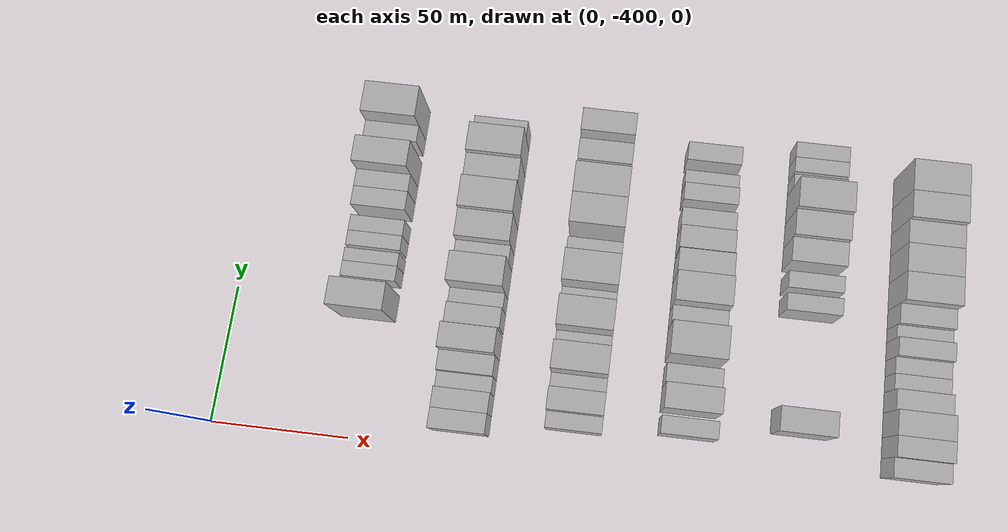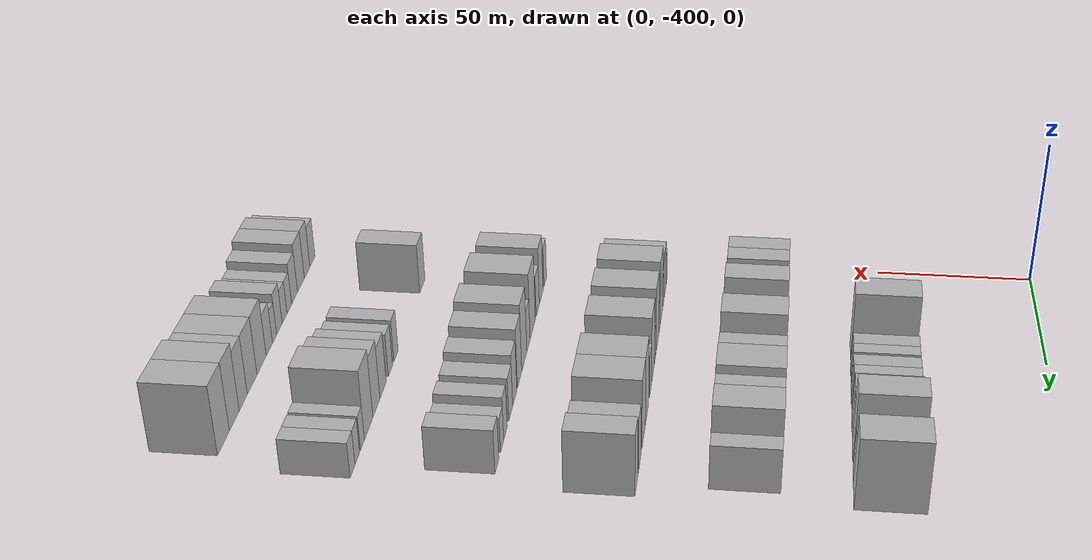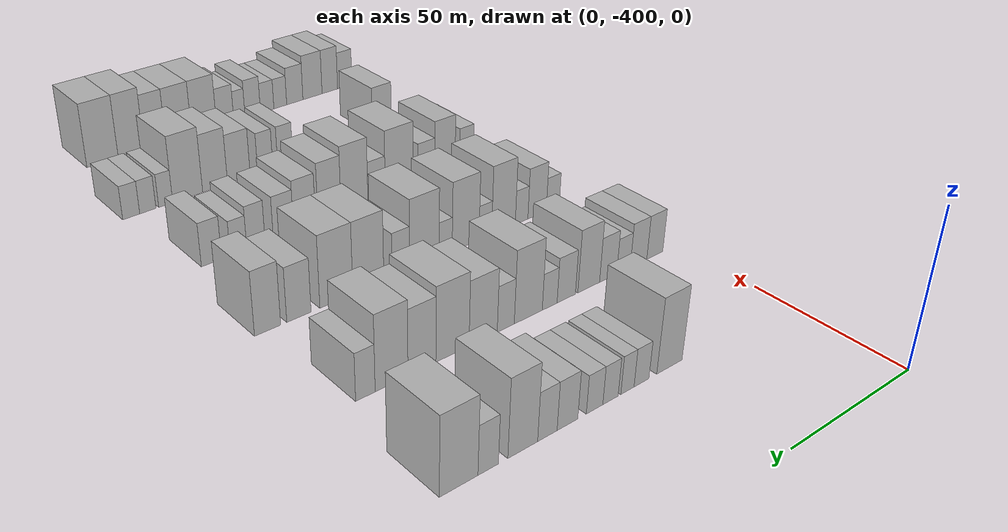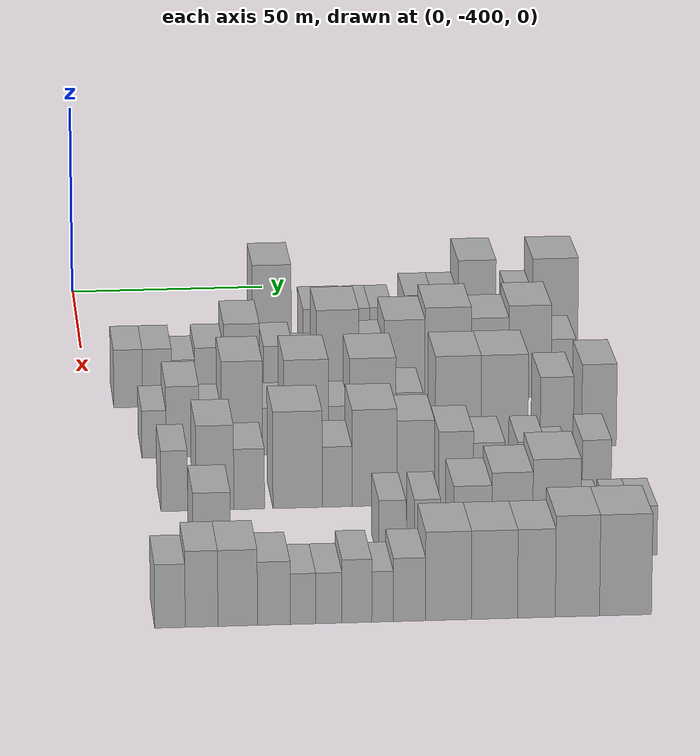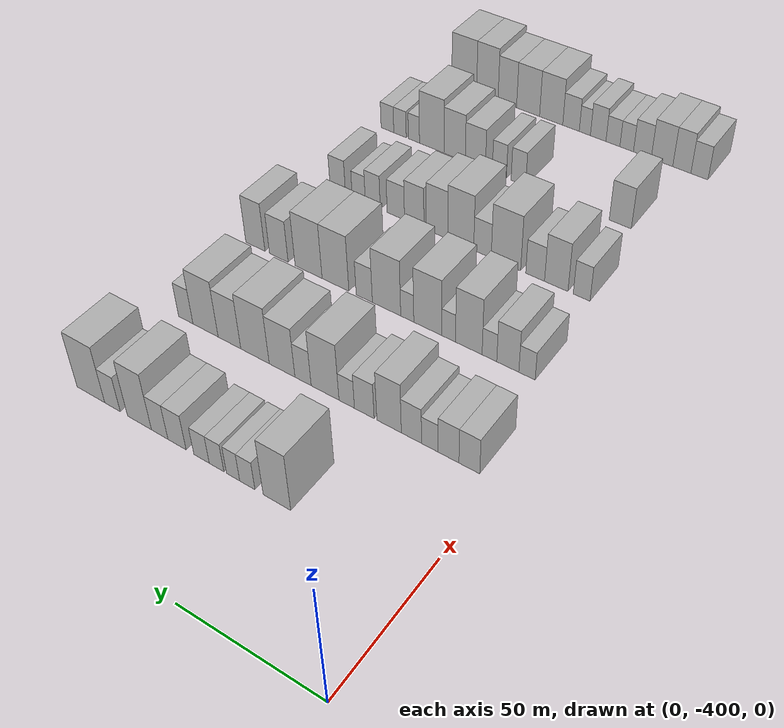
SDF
<sdf version="1.6">
 <world name="default">
  <model name="building_27">
   <static>1</static>
   <pose>50.0000 -351.5895 0 0.000000 0.000000 0.000000</pose>
   <link name="link">
    <pose>0 0 12.00 0 0 0</pose>
    <collision name="collision"><geometry><box><size>20.0000 9.9109 24.0000</size></box></geometry></collision>
    <visual name="visual">
     <cast_shadows>0</cast_shadows>
     <geometry><box><size>20.0000 9.9109 24.0000</size></box></geometry>
     <material>
      <script>
       <uri>model://HANNAS_wall/materials/scripts</uri>
       <uri>model://HANNAS_wall/materials/textures</uri>
       <name>vrc/HANNAS_wall</name>
      </script>
     </material>
    </visual>
   </link>
  </model>
  <model name="building_28">
   <static>1</static>
   <pose>50.0000 -340.8206 0 0.000000 0.000000 0.000000</pose>
   <link name="link">
    <pose>0 0 6.00 0 0 0</pose>
    <collision name="collision"><geometry><box><size>20.0000 5.6268 12.0000</size></box></geometry></collision>
    <visual name="visual">
     <cast_shadows>0</cast_shadows>
     <geometry><box><size>20.0000 5.6268 12.0000</size></box></geometry>
     <material>
      <script>
       <uri>model://HANNAS_wall/materials/scripts</uri>
       <uri>model://HANNAS_wall/materials/textures</uri>
       <name>vrc/HANNAS_wall</name>
      </script>
     </material>
    </visual>
   </link>
  </model>
  <model name="building_29">
   <static>1</static>
   <pose>50.0000 -335.5534 0 0.000000 0.000000 0.000000</pose>
   <link name="link">
    <pose>0 0 6.00 0 0 0</pose>
    <collision name="collision"><geometry><box><size>20.0000 4.9076 12.0000</size></box></geometry></collision>
    <visual name="visual">
     <cast_shadows>0</cast_shadows>
     <geometry><box><size>20.0000 4.9076 12.0000</size></box></geometry>
     <material>
      <script>
       <uri>model://HANNAS_wall/materials/scripts</uri>
       <uri>model://HANNAS_wall/materials/textures</uri>
       <name>vrc/HANNAS_wall</name>
      </script>
     </material>
    </visual>
   </link>
  </model>
  <model name="building_30">
   <static>1</static>
   <pose>50.0000 -329.3261 0 0.000000 0.000000 0.000000</pose>
   <link name="link">
    <pose>0 0 6.00 0 0 0</pose>
    <collision name="collision"><geometry><box><size>20.0000 5.5471 12.0000</size></box></geometry></collision>
    <visual name="visual">
     <cast_shadows>0</cast_shadows>
     <geometry><box><size>20.0000 5.5471 12.0000</size></box></geometry>
     <material>
      <script>
       <uri>model://HANNAS_wall/materials/scripts</uri>
       <uri>model://HANNAS_wall/materials/textures</uri>
       <name>vrc/HANNAS_wall</name>
      </script>
     </material>
    </visual>
   </link>
  </model>
  <model name="building_31">
   <static>1</static>
   <pose>50.0000 -323.6118 0 0.000000 0.000000 0.000000</pose>
   <link name="link">
    <pose>0 0 6.00 0 0 0</pose>
    <collision name="collision"><geometry><box><size>20.0000 5.8816 12.0000</size></box></geometry></collision>
    <visual name="visual">
     <cast_shadows>0</cast_shadows>
     <geometry><box><size>20.0000 5.8816 12.0000</size></box></geometry>
     <material>
      <script>
       <uri>model://HANNAS_wall/materials/scripts</uri>
       <uri>model://HANNAS_wall/materials/textures</uri>
       <name>vrc/HANNAS_wall</name>
      </script>
     </material>
    </visual>
   </link>
  </model>
  <model name="building_32">
   <static>1</static>
   <pose>50.0000 -314.1116 0 0.000000 0.000000 0.000000</pose>
   <link name="link">
    <pose>0 0 7.50 0 0 0</pose>
    <collision name="collision"><geometry><box><size>20.0000 7.1188 15.0000</size></box></geometry></collision>
    <visual name="visual">
     <cast_shadows>0</cast_shadows>
     <geometry><box><size>20.0000 7.1188 15.0000</size></box></geometry>
     <material>
      <script>
       <uri>model://HANNAS_wall/materials/scripts</uri>
       <uri>model://HANNAS_wall/materials/textures</uri>
       <name>vrc/HANNAS_wall</name>
      </script>
     </material>
    </visual>
   </link>
  </model>
  <model name="building_33">
   <static>1</static>
   <pose>50.0000 -307.2831 0 0.000000 0.000000 0.000000</pose>
   <link name="link">
    <pose>0 0 7.50 0 0 0</pose>
    <collision name="collision"><geometry><box><size>20.0000 6.5383 15.0000</size></box></geometry></collision>
    <visual name="visual">
     <cast_shadows>0</cast_shadows>
     <geometry><box><size>20.0000 6.5383 15.0000</size></box></geometry>
     <material>
      <script>
       <uri>model://HANNAS_wall/materials/scripts</uri>
       <uri>model://HANNAS_wall/materials/textures</uri>
       <name>vrc/HANNAS_wall</name>
      </script>
     </material>
    </visual>
   </link>
  </model>
  <model name="building_34">
   <static>1</static>
   <pose>50.0000 -299.1595 0 0.000000 0.000000 0.000000</pose>
   <link name="link">
    <pose>0 0 12.00 0 0 0</pose>
    <collision name="collision"><geometry><box><size>20.0000 9.7088 24.0000</size></box></geometry></collision>
    <visual name="visual">
     <cast_shadows>0</cast_shadows>
     <geometry><box><size>20.0000 9.7088 24.0000</size></box></geometry>
     <material>
      <script>
       <uri>model://HANNAS_wall/materials/scripts</uri>
       <uri>model://HANNAS_wall/materials/textures</uri>
       <name>vrc/HANNAS_wall</name>
      </script>
     </material>
    </visual>
   </link>
  </model>
  <model name="building_35">
   <static>1</static>
   <pose>50.0000 -288.0968 0 0.000000 0.000000 0.000000</pose>
   <link name="link">
    <pose>0 0 7.50 0 0 0</pose>
    <collision name="collision"><geometry><box><size>20.0000 6.4166 15.0000</size></box></geometry></collision>
    <visual name="visual">
     <cast_shadows>0</cast_shadows>
     <geometry><box><size>20.0000 6.4166 15.0000</size></box></geometry>
     <material>
      <script>
       <uri>model://HANNAS_wall/materials/scripts</uri>
       <uri>model://HANNAS_wall/materials/textures</uri>
       <name>vrc/HANNAS_wall</name>
      </script>
     </material>
    </visual>
   </link>
  </model>
  <model name="building_36">
   <static>1</static>
   <pose>50.0000 -279.0418 0 0.000000 0.000000 0.000000</pose>
   <link name="link">
    <pose>0 0 12.00 0 0 0</pose>
    <collision name="collision"><geometry><box><size>20.0000 11.6933 24.0000</size></box></geometry></collision>
    <visual name="visual">
     <cast_shadows>0</cast_shadows>
     <geometry><box><size>20.0000 11.6933 24.0000</size></box></geometry>
     <material>
      <script>
       <uri>model://HANNAS_wall/materials/scripts</uri>
       <uri>model://HANNAS_wall/materials/textures</uri>
       <name>vrc/HANNAS_wall</name>
      </script>
     </material>
    </visual>
   </link>
  </model>
  <model name="building_160">
   <static>1</static>
   <pose>90.0000 -390.1315 0 0.000000 0.000000 0.000000</pose>
   <link name="link">
    <pose>0 0 7.50 0 0 0</pose>
    <collision name="collision"><geometry><box><size>20.0000 7.1102 15.0000</size></box></geometry></collision>
    <visual name="visual">
     <cast_shadows>0</cast_shadows>
     <geometry><box><size>20.0000 7.1102 15.0000</size></box></geometry>
     <material>
      <script>
       <uri>model://HANNAS_wall/materials/scripts</uri>
       <uri>model://HANNAS_wall/materials/textures</uri>
       <name>vrc/HANNAS_wall</name>
      </script>
     </material>
    </visual>
   </link>
  </model>
  <model name="building_161">
   <static>1</static>
   <pose>90.0000 -382.9507 0 0.000000 0.000000 0.000000</pose>
   <link name="link">
    <pose>0 0 7.50 0 0 0</pose>
    <collision name="collision"><geometry><box><size>20.0000 7.2513 15.0000</size></box></geometry></collision>
    <visual name="visual">
     <cast_shadows>0</cast_shadows>
     <geometry><box><size>20.0000 7.2513 15.0000</size></box></geometry>
     <material>
      <script>
       <uri>model://HANNAS_wall/materials/scripts</uri>
       <uri>model://HANNAS_wall/materials/textures</uri>
       <name>vrc/HANNAS_wall</name>
      </script>
     </material>
    </visual>
   </link>
  </model>
  <model name="building_162">
   <static>1</static>
   <pose>90.0000 -376.4285 0 0.000000 0.000000 0.000000</pose>
   <link name="link">
    <pose>0 0 6.00 0 0 0</pose>
    <collision name="collision"><geometry><box><size>20.0000 5.7932 12.0000</size></box></geometry></collision>
    <visual name="visual">
     <cast_shadows>0</cast_shadows>
     <geometry><box><size>20.0000 5.7932 12.0000</size></box></geometry>
     <material>
      <script>
       <uri>model://HANNAS_wall/materials/scripts</uri>
       <uri>model://HANNAS_wall/materials/textures</uri>
       <name>vrc/HANNAS_wall</name>
      </script>
     </material>
    </visual>
   </link>
  </model>
  <model name="building_163">
   <static>1</static>
   <pose>90.0000 -369.9299 0 0.000000 0.000000 0.000000</pose>
   <link name="link">
    <pose>0 0 7.50 0 0 0</pose>
    <collision name="collision"><geometry><box><size>20.0000 7.2039 15.0000</size></box></geometry></collision>
    <visual name="visual">
     <cast_shadows>0</cast_shadows>
     <geometry><box><size>20.0000 7.2039 15.0000</size></box></geometry>
     <material>
      <script>
       <uri>model://HANNAS_wall/materials/scripts</uri>
       <uri>model://HANNAS_wall/materials/textures</uri>
       <name>vrc/HANNAS_wall</name>
      </script>
     </material>
    </visual>
   </link>
  </model>
  <model name="building_164">
   <static>1</static>
   <pose>90.0000 -361.8781 0 0.000000 0.000000 0.000000</pose>
   <link name="link">
    <pose>0 0 10.50 0 0 0</pose>
    <collision name="collision"><geometry><box><size>20.0000 8.8998 21.0000</size></box></geometry></collision>
    <visual name="visual">
     <cast_shadows>0</cast_shadows>
     <geometry><box><size>20.0000 8.8998 21.0000</size></box></geometry>
     <material>
      <script>
       <uri>model://HANNAS_wall/materials/scripts</uri>
       <uri>model://HANNAS_wall/materials/textures</uri>
       <name>vrc/HANNAS_wall</name>
      </script>
     </material>
    </visual>
   </link>
  </model>
  <model name="building_165">
   <static>1</static>
   <pose>90.0000 -352.7804 0 0.000000 0.000000 0.000000</pose>
   <link name="link">
    <pose>0 0 7.50 0 0 0</pose>
    <collision name="collision"><geometry><box><size>20.0000 7.2956 15.0000</size></box></geometry></collision>
    <visual name="visual">
     <cast_shadows>0</cast_shadows>
     <geometry><box><size>20.0000 7.2956 15.0000</size></box></geometry>
     <material>
      <script>
       <uri>model://HANNAS_wall/materials/scripts</uri>
       <uri>model://HANNAS_wall/materials/textures</uri>
       <name>vrc/HANNAS_wall</name>
      </script>
     </material>
    </visual>
   </link>
  </model>
  <model name="building_166">
   <static>1</static>
   <pose>90.0000 -346.2316 0 0.000000 0.000000 0.000000</pose>
   <link name="link">
    <pose>0 0 6.00 0 0 0</pose>
    <collision name="collision"><geometry><box><size>20.0000 5.8021 12.0000</size></box></geometry></collision>
    <visual name="visual">
     <cast_shadows>0</cast_shadows>
     <geometry><box><size>20.0000 5.8021 12.0000</size></box></geometry>
     <material>
      <script>
       <uri>model://HANNAS_wall/materials/scripts</uri>
       <uri>model://HANNAS_wall/materials/textures</uri>
       <name>vrc/HANNAS_wall</name>
      </script>
     </material>
    </visual>
   </link>
  </model>
  <model name="building_167">
   <static>1</static>
   <pose>90.0000 -338.0031 0 0.000000 0.000000 0.000000</pose>
   <link name="link">
    <pose>0 0 12.00 0 0 0</pose>
    <collision name="collision"><geometry><box><size>20.0000 10.6549 24.0000</size></box></geometry></collision>
    <visual name="visual">
     <cast_shadows>0</cast_shadows>
     <geometry><box><size>20.0000 10.6549 24.0000</size></box></geometry>
     <material>
      <script>
       <uri>model://HANNAS_wall/materials/scripts</uri>
       <uri>model://HANNAS_wall/materials/textures</uri>
       <name>vrc/HANNAS_wall</name>
      </script>
     </material>
    </visual>
   </link>
  </model>
  <model name="building_168">
   <static>1</static>
   <pose>90.0000 -329.5153 0 0.000000 0.000000 0.000000</pose>
   <link name="link">
    <pose>0 0 7.50 0 0 0</pose>
    <collision name="collision"><geometry><box><size>20.0000 6.3205 15.0000</size></box></geometry></collision>
    <visual name="visual">
     <cast_shadows>0</cast_shadows>
     <geometry><box><size>20.0000 6.3205 15.0000</size></box></geometry>
     <material>
      <script>
       <uri>model://HANNAS_wall/materials/scripts</uri>
       <uri>model://HANNAS_wall/materials/textures</uri>
       <name>vrc/HANNAS_wall</name>
      </script>
     </material>
    </visual>
   </link>
  </model>
  <model name="building_169">
   <static>1</static>
   <pose>90.0000 -321.2639 0 0.000000 0.000000 0.000000</pose>
   <link name="link">
    <pose>0 0 10.50 0 0 0</pose>
    <collision name="collision"><geometry><box><size>20.0000 10.1824 21.0000</size></box></geometry></collision>
    <visual name="visual">
     <cast_shadows>0</cast_shadows>
     <geometry><box><size>20.0000 10.1824 21.0000</size></box></geometry>
     <material>
      <script>
       <uri>model://HANNAS_wall/materials/scripts</uri>
       <uri>model://HANNAS_wall/materials/textures</uri>
       <name>vrc/HANNAS_wall</name>
      </script>
     </material>
    </visual>
   </link>
  </model>
  <model name="building_170">
   <static>1</static>
   <pose>90.0000 -310.3995 0 0.000000 0.000000 0.000000</pose>
   <link name="link">
    <pose>0 0 12.00 0 0 0</pose>
    <collision name="collision"><geometry><box><size>20.0000 11.5463 24.0000</size></box></geometry></collision>
    <visual name="visual">
     <cast_shadows>0</cast_shadows>
     <geometry><box><size>20.0000 11.5463 24.0000</size></box></geometry>
     <material>
      <script>
       <uri>model://HANNAS_wall/materials/scripts</uri>
       <uri>model://HANNAS_wall/materials/textures</uri>
       <name>vrc/HANNAS_wall</name>
      </script>
     </material>
    </visual>
   </link>
  </model>
  <model name="building_171">
   <static>1</static>
   <pose>90.0000 -299.9283 0 0.000000 0.000000 0.000000</pose>
   <link name="link">
    <pose>0 0 10.50 0 0 0</pose>
    <collision name="collision"><geometry><box><size>20.0000 9.3961 21.0000</size></box></geometry></collision>
    <visual name="visual">
     <cast_shadows>0</cast_shadows>
     <geometry><box><size>20.0000 9.3961 21.0000</size></box></geometry>
     <material>
      <script>
       <uri>model://HANNAS_wall/materials/scripts</uri>
       <uri>model://HANNAS_wall/materials/textures</uri>
       <name>vrc/HANNAS_wall</name>
      </script>
     </material>
    </visual>
   </link>
  </model>
  <model name="building_172">
   <static>1</static>
   <pose>90.0000 -289.8986 0 0.000000 0.000000 0.000000</pose>
   <link name="link">
    <pose>0 0 12.00 0 0 0</pose>
    <collision name="collision"><geometry><box><size>20.0000 10.6634 24.0000</size></box></geometry></collision>
    <visual name="visual">
     <cast_shadows>0</cast_shadows>
     <geometry><box><size>20.0000 10.6634 24.0000</size></box></geometry>
     <material>
      <script>
       <uri>model://HANNAS_wall/materials/scripts</uri>
       <uri>model://HANNAS_wall/materials/textures</uri>
       <name>vrc/HANNAS_wall</name>
      </script>
     </material>
    </visual>
   </link>
  </model>
  <model name="building_173">
   <static>1</static>
   <pose>90.0000 -281.4781 0 0.000000 0.000000 0.000000</pose>
   <link name="link">
    <pose>0 0 7.50 0 0 0</pose>
    <collision name="collision"><geometry><box><size>20.0000 6.1776 15.0000</size></box></geometry></collision>
    <visual name="visual">
     <cast_shadows>0</cast_shadows>
     <geometry><box><size>20.0000 6.1776 15.0000</size></box></geometry>
     <material>
      <script>
       <uri>model://HANNAS_wall/materials/scripts</uri>
       <uri>model://HANNAS_wall/materials/textures</uri>
       <name>vrc/HANNAS_wall</name>
      </script>
     </material>
    </visual>
   </link>
  </model>
  <model name="building_292">
   <static>1</static>
   <pose>130.0000 -385.7689 0 0.000000 0.000000 0.000000</pose>
   <link name="link">
    <pose>0 0 6.00 0 0 0</pose>
    <collision name="collision"><geometry><box><size>20.0000 5.8402 12.0000</size></box></geometry></collision>
    <visual name="visual">
     <cast_shadows>0</cast_shadows>
     <geometry><box><size>20.0000 5.8402 12.0000</size></box></geometry>
     <material>
      <script>
       <uri>model://HANNAS_wall/materials/scripts</uri>
       <uri>model://HANNAS_wall/materials/textures</uri>
       <name>vrc/HANNAS_wall</name>
      </script>
     </material>
    </visual>
   </link>
  </model>
  <model name="building_293">
   <static>1</static>
   <pose>130.0000 -378.8366 0 0.000000 0.000000 0.000000</pose>
   <link name="link">
    <pose>0 0 9.00 0 0 0</pose>
    <collision name="collision"><geometry><box><size>20.0000 8.0244 18.0000</size></box></geometry></collision>
    <visual name="visual">
     <cast_shadows>0</cast_shadows>
     <geometry><box><size>20.0000 8.0244 18.0000</size></box></geometry>
     <material>
      <script>
       <uri>model://HANNAS_wall/materials/scripts</uri>
       <uri>model://HANNAS_wall/materials/textures</uri>
       <name>vrc/HANNAS_wall</name>
      </script>
     </material>
    </visual>
   </link>
  </model>
  <model name="building_294">
   <static>1</static>
   <pose>130.0000 -372.1173 0 0.000000 0.000000 0.000000</pose>
   <link name="link">
    <pose>0 0 6.00 0 0 0</pose>
    <collision name="collision"><geometry><box><size>20.0000 5.4142 12.0000</size></box></geometry></collision>
    <visual name="visual">
     <cast_shadows>0</cast_shadows>
     <geometry><box><size>20.0000 5.4142 12.0000</size></box></geometry>
     <material>
      <script>
       <uri>model://HANNAS_wall/materials/scripts</uri>
       <uri>model://HANNAS_wall/materials/textures</uri>
       <name>vrc/HANNAS_wall</name>
      </script>
     </material>
    </visual>
   </link>
  </model>
  <model name="building_295">
   <static>1</static>
   <pose>130.0000 -364.4337 0 0.000000 0.000000 0.000000</pose>
   <link name="link">
    <pose>0 0 12.00 0 0 0</pose>
    <collision name="collision"><geometry><box><size>20.0000 9.9531 24.0000</size></box></geometry></collision>
    <visual name="visual">
     <cast_shadows>0</cast_shadows>
     <geometry><box><size>20.0000 9.9531 24.0000</size></box></geometry>
     <material>
      <script>
       <uri>model://HANNAS_wall/materials/scripts</uri>
       <uri>model://HANNAS_wall/materials/textures</uri>
       <name>vrc/HANNAS_wall</name>
      </script>
     </material>
    </visual>
   </link>
  </model>
  <model name="building_296">
   <static>1</static>
   <pose>130.0000 -356.8526 0 0.000000 0.000000 0.000000</pose>
   <link name="link">
    <pose>0 0 6.00 0 0 0</pose>
    <collision name="collision"><geometry><box><size>20.0000 5.2091 12.0000</size></box></geometry></collision>
    <visual name="visual">
     <cast_shadows>0</cast_shadows>
     <geometry><box><size>20.0000 5.2091 12.0000</size></box></geometry>
     <material>
      <script>
       <uri>model://HANNAS_wall/materials/scripts</uri>
       <uri>model://HANNAS_wall/materials/textures</uri>
       <name>vrc/HANNAS_wall</name>
      </script>
     </material>
    </visual>
   </link>
  </model>
  <model name="building_297">
   <static>1</static>
   <pose>130.0000 -348.8376 0 0.000000 0.000000 0.000000</pose>
   <link name="link">
    <pose>0 0 12.00 0 0 0</pose>
    <collision name="collision"><geometry><box><size>20.0000 10.8208 24.0000</size></box></geometry></collision>
    <visual name="visual">
     <cast_shadows>0</cast_shadows>
     <geometry><box><size>20.0000 10.8208 24.0000</size></box></geometry>
     <material>
      <script>
       <uri>model://HANNAS_wall/materials/scripts</uri>
       <uri>model://HANNAS_wall/materials/textures</uri>
       <name>vrc/HANNAS_wall</name>
      </script>
     </material>
    </visual>
   </link>
  </model>
  <model name="building_298">
   <static>1</static>
   <pose>130.0000 -340.8591 0 0.000000 0.000000 0.000000</pose>
   <link name="link">
    <pose>0 0 6.00 0 0 0</pose>
    <collision name="collision"><geometry><box><size>20.0000 5.1363 12.0000</size></box></geometry></collision>
    <visual name="visual">
     <cast_shadows>0</cast_shadows>
     <geometry><box><size>20.0000 5.1363 12.0000</size></box></geometry>
     <material>
      <script>
       <uri>model://HANNAS_wall/materials/scripts</uri>
       <uri>model://HANNAS_wall/materials/textures</uri>
       <name>vrc/HANNAS_wall</name>
      </script>
     </material>
    </visual>
   </link>
  </model>
  <model name="building_299">
   <static>1</static>
   <pose>130.0000 -332.6374 0 0.000000 0.000000 0.000000</pose>
   <link name="link">
    <pose>0 0 12.00 0 0 0</pose>
    <collision name="collision"><geometry><box><size>20.0000 11.3071 24.0000</size></box></geometry></collision>
    <visual name="visual">
     <cast_shadows>0</cast_shadows>
     <geometry><box><size>20.0000 11.3071 24.0000</size></box></geometry>
     <material>
      <script>
       <uri>model://HANNAS_wall/materials/scripts</uri>
       <uri>model://HANNAS_wall/materials/textures</uri>
       <name>vrc/HANNAS_wall</name>
      </script>
     </material>
    </visual>
   </link>
  </model>
  <model name="building_300">
   <static>1</static>
   <pose>130.0000 -323.6843 0 0.000000 0.000000 0.000000</pose>
   <link name="link">
    <pose>0 0 7.50 0 0 0</pose>
    <collision name="collision"><geometry><box><size>20.0000 6.5991 15.0000</size></box></geometry></collision>
    <visual name="visual">
     <cast_shadows>0</cast_shadows>
     <geometry><box><size>20.0000 6.5991 15.0000</size></box></geometry>
     <material>
      <script>
       <uri>model://HANNAS_wall/materials/scripts</uri>
       <uri>model://HANNAS_wall/materials/textures</uri>
       <name>vrc/HANNAS_wall</name>
      </script>
     </material>
    </visual>
   </link>
  </model>
  <model name="building_301">
   <static>1</static>
   <pose>130.0000 -311.8084 0 0.000000 0.000000 0.000000</pose>
   <link name="link">
    <pose>0 0 12.00 0 0 0</pose>
    <collision name="collision"><geometry><box><size>20.0000 11.1526 24.0000</size></box></geometry></collision>
    <visual name="visual">
     <cast_shadows>0</cast_shadows>
     <geometry><box><size>20.0000 11.1526 24.0000</size></box></geometry>
     <material>
      <script>
       <uri>model://HANNAS_wall/materials/scripts</uri>
       <uri>model://HANNAS_wall/materials/textures</uri>
       <name>vrc/HANNAS_wall</name>
      </script>
     </material>
    </visual>
   </link>
  </model>
  <model name="building_302">
   <static>1</static>
   <pose>130.0000 -300.4855 0 0.000000 0.000000 0.000000</pose>
   <link name="link">
    <pose>0 0 12.00 0 0 0</pose>
    <collision name="collision"><geometry><box><size>20.0000 11.4932 24.0000</size></box></geometry></collision>
    <visual name="visual">
     <cast_shadows>0</cast_shadows>
     <geometry><box><size>20.0000 11.4932 24.0000</size></box></geometry>
     <material>
      <script>
       <uri>model://HANNAS_wall/materials/scripts</uri>
       <uri>model://HANNAS_wall/materials/textures</uri>
       <name>vrc/HANNAS_wall</name>
      </script>
     </material>
    </visual>
   </link>
  </model>
  <model name="building_303">
   <static>1</static>
   <pose>130.0000 -287.6702 0 0.000000 0.000000 0.000000</pose>
   <link name="link">
    <pose>0 0 9.00 0 0 0</pose>
    <collision name="collision"><geometry><box><size>20.0000 8.1376 18.0000</size></box></geometry></collision>
    <visual name="visual">
     <cast_shadows>0</cast_shadows>
     <geometry><box><size>20.0000 8.1376 18.0000</size></box></geometry>
     <material>
      <script>
       <uri>model://HANNAS_wall/materials/scripts</uri>
       <uri>model://HANNAS_wall/materials/textures</uri>
       <name>vrc/HANNAS_wall</name>
      </script>
     </material>
    </visual>
   </link>
  </model>
  <model name="building_304">
   <static>1</static>
   <pose>130.0000 -277.3558 0 0.000000 0.000000 0.000000</pose>
   <link name="link">
    <pose>0 0 10.50 0 0 0</pose>
    <collision name="collision"><geometry><box><size>20.0000 8.4912 21.0000</size></box></geometry></collision>
    <visual name="visual">
     <cast_shadows>0</cast_shadows>
     <geometry><box><size>20.0000 8.4912 21.0000</size></box></geometry>
     <material>
      <script>
       <uri>model://HANNAS_wall/materials/scripts</uri>
       <uri>model://HANNAS_wall/materials/textures</uri>
       <name>vrc/HANNAS_wall</name>
      </script>
     </material>
    </visual>
   </link>
  </model>
  <model name="building_425">
   <static>1</static>
   <pose>170.0000 -383.0304 0 0.000000 0.000000 0.000000</pose>
   <link name="link">
    <pose>0 0 7.50 0 0 0</pose>
    <collision name="collision"><geometry><box><size>20.0000 6.2707 15.0000</size></box></geometry></collision>
    <visual name="visual">
     <cast_shadows>0</cast_shadows>
     <geometry><box><size>20.0000 6.2707 15.0000</size></box></geometry>
     <material>
      <script>
       <uri>model://HANNAS_wall/materials/scripts</uri>
       <uri>model://HANNAS_wall/materials/textures</uri>
       <name>vrc/HANNAS_wall</name>
      </script>
     </material>
    </visual>
   </link>
  </model>
  <model name="building_426">
   <static>1</static>
   <pose>170.0000 -373.4282 0 0.000000 0.000000 0.000000</pose>
   <link name="link">
    <pose>0 0 10.50 0 0 0</pose>
    <collision name="collision"><geometry><box><size>20.0000 8.9338 21.0000</size></box></geometry></collision>
    <visual name="visual">
     <cast_shadows>0</cast_shadows>
     <geometry><box><size>20.0000 8.9338 21.0000</size></box></geometry>
     <material>
      <script>
       <uri>model://HANNAS_wall/materials/scripts</uri>
       <uri>model://HANNAS_wall/materials/textures</uri>
       <name>vrc/HANNAS_wall</name>
      </script>
     </material>
    </visual>
   </link>
  </model>
  <model name="building_427">
   <static>1</static>
   <pose>170.0000 -365.3223 0 0.000000 0.000000 0.000000</pose>
   <link name="link">
    <pose>0 0 7.50 0 0 0</pose>
    <collision name="collision"><geometry><box><size>20.0000 7.2780 15.0000</size></box></geometry></collision>
    <visual name="visual">
     <cast_shadows>0</cast_shadows>
     <geometry><box><size>20.0000 7.2780 15.0000</size></box></geometry>
     <material>
      <script>
       <uri>model://HANNAS_wall/materials/scripts</uri>
       <uri>model://HANNAS_wall/materials/textures</uri>
       <name>vrc/HANNAS_wall</name>
      </script>
     </material>
    </visual>
   </link>
  </model>
  <model name="building_428">
   <static>1</static>
   <pose>170.0000 -353.8548 0 0.000000 0.000000 0.000000</pose>
   <link name="link">
    <pose>0 0 12.00 0 0 0</pose>
    <collision name="collision"><geometry><box><size>20.0000 11.6570 24.0000</size></box></geometry></collision>
    <visual name="visual">
     <cast_shadows>0</cast_shadows>
     <geometry><box><size>20.0000 11.6570 24.0000</size></box></geometry>
     <material>
      <script>
       <uri>model://HANNAS_wall/materials/scripts</uri>
       <uri>model://HANNAS_wall/materials/textures</uri>
       <name>vrc/HANNAS_wall</name>
      </script>
     </material>
    </visual>
   </link>
  </model>
  <model name="building_429">
   <static>1</static>
   <pose>170.0000 -344.4974 0 0.000000 0.000000 0.000000</pose>
   <link name="link">
    <pose>0 0 7.50 0 0 0</pose>
    <collision name="collision"><geometry><box><size>20.0000 7.0576 15.0000</size></box></geometry></collision>
    <visual name="visual">
     <cast_shadows>0</cast_shadows>
     <geometry><box><size>20.0000 7.0576 15.0000</size></box></geometry>
     <material>
      <script>
       <uri>model://HANNAS_wall/materials/scripts</uri>
       <uri>model://HANNAS_wall/materials/textures</uri>
       <name>vrc/HANNAS_wall</name>
      </script>
     </material>
    </visual>
   </link>
  </model>
  <model name="building_430">
   <static>1</static>
   <pose>170.0000 -335.6286 0 0.000000 0.000000 0.000000</pose>
   <link name="link">
    <pose>0 0 12.00 0 0 0</pose>
    <collision name="collision"><geometry><box><size>20.0000 10.6801 24.0000</size></box></geometry></collision>
    <visual name="visual">
     <cast_shadows>0</cast_shadows>
     <geometry><box><size>20.0000 10.6801 24.0000</size></box></geometry>
     <material>
      <script>
       <uri>model://HANNAS_wall/materials/scripts</uri>
       <uri>model://HANNAS_wall/materials/textures</uri>
       <name>vrc/HANNAS_wall</name>
      </script>
     </material>
    </visual>
   </link>
  </model>
  <model name="building_431">
   <static>1</static>
   <pose>170.0000 -325.8327 0 0.000000 0.000000 0.000000</pose>
   <link name="link">
    <pose>0 0 10.50 0 0 0</pose>
    <collision name="collision"><geometry><box><size>20.0000 8.9116 21.0000</size></box></geometry></collision>
    <visual name="visual">
     <cast_shadows>0</cast_shadows>
     <geometry><box><size>20.0000 8.9116 21.0000</size></box></geometry>
     <material>
      <script>
       <uri>model://HANNAS_wall/materials/scripts</uri>
       <uri>model://HANNAS_wall/materials/textures</uri>
       <name>vrc/HANNAS_wall</name>
      </script>
     </material>
    </visual>
   </link>
  </model>
  <model name="building_432">
   <static>1</static>
   <pose>170.0000 -316.2425 0 0.000000 0.000000 0.000000</pose>
   <link name="link">
    <pose>0 0 9.00 0 0 0</pose>
    <collision name="collision"><geometry><box><size>20.0000 8.2688 18.0000</size></box></geometry></collision>
    <visual name="visual">
     <cast_shadows>0</cast_shadows>
     <geometry><box><size>20.0000 8.2688 18.0000</size></box></geometry>
     <material>
      <script>
       <uri>model://HANNAS_wall/materials/scripts</uri>
       <uri>model://HANNAS_wall/materials/textures</uri>
       <name>vrc/HANNAS_wall</name>
      </script>
     </material>
    </visual>
   </link>
  </model>
  <model name="building_433">
   <static>1</static>
   <pose>170.0000 -308.3608 0 0.000000 0.000000 0.000000</pose>
   <link name="link">
    <pose>0 0 7.50 0 0 0</pose>
    <collision name="collision"><geometry><box><size>20.0000 7.4946 15.0000</size></box></geometry></collision>
    <visual name="visual">
     <cast_shadows>0</cast_shadows>
     <geometry><box><size>20.0000 7.4946 15.0000</size></box></geometry>
     <material>
      <script>
       <uri>model://HANNAS_wall/materials/scripts</uri>
       <uri>model://HANNAS_wall/materials/textures</uri>
       <name>vrc/HANNAS_wall</name>
      </script>
     </material>
    </visual>
   </link>
  </model>
  <model name="building_434">
   <static>1</static>
   <pose>170.0000 -298.3379 0 0.000000 0.000000 0.000000</pose>
   <link name="link">
    <pose>0 0 7.50 0 0 0</pose>
    <collision name="collision"><geometry><box><size>20.0000 6.5512 15.0000</size></box></geometry></collision>
    <visual name="visual">
     <cast_shadows>0</cast_shadows>
     <geometry><box><size>20.0000 6.5512 15.0000</size></box></geometry>
     <material>
      <script>
       <uri>model://HANNAS_wall/materials/scripts</uri>
       <uri>model://HANNAS_wall/materials/textures</uri>
       <name>vrc/HANNAS_wall</name>
      </script>
     </material>
    </visual>
   </link>
  </model>
  <model name="building_435">
   <static>1</static>
   <pose>170.0000 -292.1366 0 0.000000 0.000000 0.000000</pose>
   <link name="link">
    <pose>0 0 6.00 0 0 0</pose>
    <collision name="collision"><geometry><box><size>20.0000 5.8514 12.0000</size></box></geometry></collision>
    <visual name="visual">
     <cast_shadows>0</cast_shadows>
     <geometry><box><size>20.0000 5.8514 12.0000</size></box></geometry>
     <material>
      <script>
       <uri>model://HANNAS_wall/materials/scripts</uri>
       <uri>model://HANNAS_wall/materials/textures</uri>
       <name>vrc/HANNAS_wall</name>
      </script>
     </material>
    </visual>
   </link>
  </model>
  <model name="building_436">
   <static>1</static>
   <pose>170.0000 -282.7425 0 0.000000 0.000000 0.000000</pose>
   <link name="link">
    <pose>0 0 7.50 0 0 0</pose>
    <collision name="collision"><geometry><box><size>20.0000 6.9369 15.0000</size></box></geometry></collision>
    <visual name="visual">
     <cast_shadows>0</cast_shadows>
     <geometry><box><size>20.0000 6.9369 15.0000</size></box></geometry>
     <material>
      <script>
       <uri>model://HANNAS_wall/materials/scripts</uri>
       <uri>model://HANNAS_wall/materials/textures</uri>
       <name>vrc/HANNAS_wall</name>
      </script>
     </material>
    </visual>
   </link>
  </model>
  <model name="building_559">
   <static>1</static>
   <pose>210.0000 -376.5559 0 0.000000 0.000000 0.000000</pose>
   <link name="link">
    <pose>0 0 9.00 0 0 0</pose>
    <collision name="collision"><geometry><box><size>20.0000 8.6721 18.0000</size></box></geometry></collision>
    <visual name="visual">
     <cast_shadows>0</cast_shadows>
     <geometry><box><size>20.0000 8.6721 18.0000</size></box></geometry>
     <material>
      <script>
       <uri>model://HANNAS_wall/materials/scripts</uri>
       <uri>model://HANNAS_wall/materials/textures</uri>
       <name>vrc/HANNAS_wall</name>
      </script>
     </material>
    </visual>
   </link>
  </model>
  <model name="building_560">
   <static>1</static>
   <pose>210.0000 -334.9184 0 0.000000 0.000000 0.000000</pose>
   <link name="link">
    <pose>0 0 7.50 0 0 0</pose>
    <collision name="collision"><geometry><box><size>20.0000 6.2010 15.0000</size></box></geometry></collision>
    <visual name="visual">
     <cast_shadows>0</cast_shadows>
     <geometry><box><size>20.0000 6.2010 15.0000</size></box></geometry>
     <material>
      <script>
       <uri>model://HANNAS_wall/materials/scripts</uri>
       <uri>model://HANNAS_wall/materials/textures</uri>
       <name>vrc/HANNAS_wall</name>
      </script>
     </material>
    </visual>
   </link>
  </model>
  <model name="building_561">
   <static>1</static>
   <pose>210.0000 -326.7884 0 0.000000 0.000000 0.000000</pose>
   <link name="link">
    <pose>0 0 7.50 0 0 0</pose>
    <collision name="collision"><geometry><box><size>20.0000 6.0590 15.0000</size></box></geometry></collision>
    <visual name="visual">
     <cast_shadows>0</cast_shadows>
     <geometry><box><size>20.0000 6.0590 15.0000</size></box></geometry>
     <material>
      <script>
       <uri>model://HANNAS_wall/materials/scripts</uri>
       <uri>model://HANNAS_wall/materials/textures</uri>
       <name>vrc/HANNAS_wall</name>
      </script>
     </material>
    </visual>
   </link>
  </model>
  <model name="building_562">
   <static>1</static>
   <pose>210.0000 -316.3368 0 0.000000 0.000000 0.000000</pose>
   <link name="link">
    <pose>0 0 9.00 0 0 0</pose>
    <collision name="collision"><geometry><box><size>20.0000 8.8441 18.0000</size></box></geometry></collision>
    <visual name="visual">
     <cast_shadows>0</cast_shadows>
     <geometry><box><size>20.0000 8.8441 18.0000</size></box></geometry>
     <material>
      <script>
       <uri>model://HANNAS_wall/materials/scripts</uri>
       <uri>model://HANNAS_wall/materials/textures</uri>
       <name>vrc/HANNAS_wall</name>
      </script>
     </material>
    </visual>
   </link>
  </model>
  <model name="building_563">
   <static>1</static>
   <pose>210.0000 -307.1668 0 0.000000 0.000000 0.000000</pose>
   <link name="link">
    <pose>0 0 10.50 0 0 0</pose>
    <collision name="collision"><geometry><box><size>20.0000 9.4960 21.0000</size></box></geometry></collision>
    <visual name="visual">
     <cast_shadows>0</cast_shadows>
     <geometry><box><size>20.0000 9.4960 21.0000</size></box></geometry>
     <material>
      <script>
       <uri>model://HANNAS_wall/materials/scripts</uri>
       <uri>model://HANNAS_wall/materials/textures</uri>
       <name>vrc/HANNAS_wall</name>
      </script>
     </material>
    </visual>
   </link>
  </model>
  <model name="building_564">
   <static>1</static>
   <pose>210.0000 -296.8667 0 0.000000 0.000000 0.000000</pose>
   <link name="link">
    <pose>0 0 12.00 0 0 0</pose>
    <collision name="collision"><geometry><box><size>20.0000 11.1041 24.0000</size></box></geometry></collision>
    <visual name="visual">
     <cast_shadows>0</cast_shadows>
     <geometry><box><size>20.0000 11.1041 24.0000</size></box></geometry>
     <material>
      <script>
       <uri>model://HANNAS_wall/materials/scripts</uri>
       <uri>model://HANNAS_wall/materials/textures</uri>
       <name>vrc/HANNAS_wall</name>
      </script>
     </material>
    </visual>
   </link>
  </model>
  <model name="building_565">
   <static>1</static>
   <pose>210.0000 -288.7677 0 0.000000 0.000000 0.000000</pose>
   <link name="link">
    <pose>0 0 6.00 0 0 0</pose>
    <collision name="collision"><geometry><box><size>20.0000 5.0939 12.0000</size></box></geometry></collision>
    <visual name="visual">
     <cast_shadows>0</cast_shadows>
     <geometry><box><size>20.0000 5.0939 12.0000</size></box></geometry>
     <material>
      <script>
       <uri>model://HANNAS_wall/materials/scripts</uri>
       <uri>model://HANNAS_wall/materials/textures</uri>
       <name>vrc/HANNAS_wall</name>
      </script>
     </material>
    </visual>
   </link>
  </model>
  <model name="building_566">
   <static>1</static>
   <pose>210.0000 -282.3248 0 0.000000 0.000000 0.000000</pose>
   <link name="link">
    <pose>0 0 6.00 0 0 0</pose>
    <collision name="collision"><geometry><box><size>20.0000 5.7918 12.0000</size></box></geometry></collision>
    <visual name="visual">
     <cast_shadows>0</cast_shadows>
     <geometry><box><size>20.0000 5.7918 12.0000</size></box></geometry>
     <material>
      <script>
       <uri>model://HANNAS_wall/materials/scripts</uri>
       <uri>model://HANNAS_wall/materials/textures</uri>
       <name>vrc/HANNAS_wall</name>
      </script>
     </material>
    </visual>
   </link>
  </model>
  <model name="building_567">
   <static>1</static>
   <pose>210.0000 -276.4473 0 0.000000 0.000000 0.000000</pose>
   <link name="link">
    <pose>0 0 6.00 0 0 0</pose>
    <collision name="collision"><geometry><box><size>20.0000 5.9633 12.0000</size></box></geometry></collision>
    <visual name="visual">
     <cast_shadows>0</cast_shadows>
     <geometry><box><size>20.0000 5.9633 12.0000</size></box></geometry>
     <material>
      <script>
       <uri>model://HANNAS_wall/materials/scripts</uri>
       <uri>model://HANNAS_wall/materials/textures</uri>
       <name>vrc/HANNAS_wall</name>
      </script>
     </material>
    </visual>
   </link>
  </model>
  <model name="building_692">
   <static>1</static>
   <pose>250.0000 -388.3652 0 0.000000 0.000000 0.000000</pose>
   <link name="link">
    <pose>0 0 7.50 0 0 0</pose>
    <collision name="collision"><geometry><box><size>20.0000 6.8370 15.0000</size></box></geometry></collision>
    <visual name="visual">
     <cast_shadows>0</cast_shadows>
     <geometry><box><size>20.0000 6.8370 15.0000</size></box></geometry>
     <material>
      <script>
       <uri>model://HANNAS_wall/materials/scripts</uri>
       <uri>model://HANNAS_wall/materials/textures</uri>
       <name>vrc/HANNAS_wall</name>
      </script>
     </material>
    </visual>
   </link>
  </model>
  <model name="building_693">
   <static>1</static>
   <pose>250.0000 -381.2784 0 0.000000 0.000000 0.000000</pose>
   <link name="link">
    <pose>0 0 9.00 0 0 0</pose>
    <collision name="collision"><geometry><box><size>20.0000 7.3366 18.0000</size></box></geometry></collision>
    <visual name="visual">
     <cast_shadows>0</cast_shadows>
     <geometry><box><size>20.0000 7.3366 18.0000</size></box></geometry>
     <material>
      <script>
       <uri>model://HANNAS_wall/materials/scripts</uri>
       <uri>model://HANNAS_wall/materials/textures</uri>
       <name>vrc/HANNAS_wall</name>
      </script>
     </material>
    </visual>
   </link>
  </model>
  <model name="building_694">
   <static>1</static>
   <pose>250.0000 -373.1863 0 0.000000 0.000000 0.000000</pose>
   <link name="link">
    <pose>0 0 9.00 0 0 0</pose>
    <collision name="collision"><geometry><box><size>20.0000 8.8478 18.0000</size></box></geometry></collision>
    <visual name="visual">
     <cast_shadows>0</cast_shadows>
     <geometry><box><size>20.0000 8.8478 18.0000</size></box></geometry>
     <material>
      <script>
       <uri>model://HANNAS_wall/materials/scripts</uri>
       <uri>model://HANNAS_wall/materials/textures</uri>
       <name>vrc/HANNAS_wall</name>
      </script>
     </material>
    </visual>
   </link>
  </model>
  <model name="building_695">
   <static>1</static>
   <pose>250.0000 -365.0711 0 0.000000 0.000000 0.000000</pose>
   <link name="link">
    <pose>0 0 7.50 0 0 0</pose>
    <collision name="collision"><geometry><box><size>20.0000 7.3825 15.0000</size></box></geometry></collision>
    <visual name="visual">
     <cast_shadows>0</cast_shadows>
     <geometry><box><size>20.0000 7.3825 15.0000</size></box></geometry>
     <material>
      <script>
       <uri>model://HANNAS_wall/materials/scripts</uri>
       <uri>model://HANNAS_wall/materials/textures</uri>
       <name>vrc/HANNAS_wall</name>
      </script>
     </material>
    </visual>
   </link>
  </model>
  <model name="building_696">
   <static>1</static>
   <pose>250.0000 -358.5141 0 0.000000 0.000000 0.000000</pose>
   <link name="link">
    <pose>0 0 6.00 0 0 0</pose>
    <collision name="collision"><geometry><box><size>20.0000 5.7314 12.0000</size></box></geometry></collision>
    <visual name="visual">
     <cast_shadows>0</cast_shadows>
     <geometry><box><size>20.0000 5.7314 12.0000</size></box></geometry>
     <material>
      <script>
       <uri>model://HANNAS_wall/materials/scripts</uri>
       <uri>model://HANNAS_wall/materials/textures</uri>
       <name>vrc/HANNAS_wall</name>
      </script>
     </material>
    </visual>
   </link>
  </model>
  <model name="building_697">
   <static>1</static>
   <pose>250.0000 -352.6941 0 0.000000 0.000000 0.000000</pose>
   <link name="link">
    <pose>0 0 6.00 0 0 0</pose>
    <collision name="collision"><geometry><box><size>20.0000 5.9086 12.0000</size></box></geometry></collision>
    <visual name="visual">
     <cast_shadows>0</cast_shadows>
     <geometry><box><size>20.0000 5.9086 12.0000</size></box></geometry>
     <material>
      <script>
       <uri>model://HANNAS_wall/materials/scripts</uri>
       <uri>model://HANNAS_wall/materials/textures</uri>
       <name>vrc/HANNAS_wall</name>
      </script>
     </material>
    </visual>
   </link>
  </model>
  <model name="building_698">
   <static>1</static>
   <pose>250.0000 -346.3964 0 0.000000 0.000000 0.000000</pose>
   <link name="link">
    <pose>0 0 7.50 0 0 0</pose>
    <collision name="collision"><geometry><box><size>20.0000 6.6868 15.0000</size></box></geometry></collision>
    <visual name="visual">
     <cast_shadows>0</cast_shadows>
     <geometry><box><size>20.0000 6.6868 15.0000</size></box></geometry>
     <material>
      <script>
       <uri>model://HANNAS_wall/materials/scripts</uri>
       <uri>model://HANNAS_wall/materials/textures</uri>
       <name>vrc/HANNAS_wall</name>
      </script>
     </material>
    </visual>
   </link>
  </model>
  <model name="building_699">
   <static>1</static>
   <pose>250.0000 -340.6354 0 0.000000 0.000000 0.000000</pose>
   <link name="link">
    <pose>0 0 6.00 0 0 0</pose>
    <collision name="collision"><geometry><box><size>20.0000 4.8352 12.0000</size></box></geometry></collision>
    <visual name="visual">
     <cast_shadows>0</cast_shadows>
     <geometry><box><size>20.0000 4.8352 12.0000</size></box></geometry>
     <material>
      <script>
       <uri>model://HANNAS_wall/materials/scripts</uri>
       <uri>model://HANNAS_wall/materials/textures</uri>
       <name>vrc/HANNAS_wall</name>
      </script>
     </material>
    </visual>
   </link>
  </model>
  <model name="building_700">
   <static>1</static>
   <pose>250.0000 -334.5924 0 0.000000 0.000000 0.000000</pose>
   <link name="link">
    <pose>0 0 7.50 0 0 0</pose>
    <collision name="collision"><geometry><box><size>20.0000 7.2507 15.0000</size></box></geometry></collision>
    <visual name="visual">
     <cast_shadows>0</cast_shadows>
     <geometry><box><size>20.0000 7.2507 15.0000</size></box></geometry>
     <material>
      <script>
       <uri>model://HANNAS_wall/materials/scripts</uri>
       <uri>model://HANNAS_wall/materials/textures</uri>
       <name>vrc/HANNAS_wall</name>
      </script>
     </material>
    </visual>
   </link>
  </model>
  <model name="building_701">
   <static>1</static>
   <pose>250.0000 -325.7988 0 0.000000 0.000000 0.000000</pose>
   <link name="link">
    <pose>0 0 10.50 0 0 0</pose>
    <collision name="collision"><geometry><box><size>20.0000 10.3365 21.0000</size></box></geometry></collision>
    <visual name="visual">
     <cast_shadows>0</cast_shadows>
     <geometry><box><size>20.0000 10.3365 21.0000</size></box></geometry>
     <material>
      <script>
       <uri>model://HANNAS_wall/materials/scripts</uri>
       <uri>model://HANNAS_wall/materials/textures</uri>
       <name>vrc/HANNAS_wall</name>
      </script>
     </material>
    </visual>
   </link>
  </model>
  <model name="building_702">
   <static>1</static>
   <pose>250.0000 -315.4222 0 0.000000 0.000000 0.000000</pose>
   <link name="link">
    <pose>0 0 10.50 0 0 0</pose>
    <collision name="collision"><geometry><box><size>20.0000 10.4166 21.0000</size></box></geometry></collision>
    <visual name="visual">
     <cast_shadows>0</cast_shadows>
     <geometry><box><size>20.0000 10.4166 21.0000</size></box></geometry>
     <material>
      <script>
       <uri>model://HANNAS_wall/materials/scripts</uri>
       <uri>model://HANNAS_wall/materials/textures</uri>
       <name>vrc/HANNAS_wall</name>
      </script>
     </material>
    </visual>
   </link>
  </model>
  <model name="building_703">
   <static>1</static>
   <pose>250.0000 -305.9441 0 0.000000 0.000000 0.000000</pose>
   <link name="link">
    <pose>0 0 10.50 0 0 0</pose>
    <collision name="collision"><geometry><box><size>20.0000 8.5396 21.0000</size></box></geometry></collision>
    <visual name="visual">
     <cast_shadows>0</cast_shadows>
     <geometry><box><size>20.0000 8.5396 21.0000</size></box></geometry>
     <material>
      <script>
       <uri>model://HANNAS_wall/materials/scripts</uri>
       <uri>model://HANNAS_wall/materials/textures</uri>
       <name>vrc/HANNAS_wall</name>
      </script>
     </material>
    </visual>
   </link>
  </model>
  <model name="building_704">
   <static>1</static>
   <pose>250.0000 -296.6675 0 0.000000 0.000000 0.000000</pose>
   <link name="link">
    <pose>0 0 12.00 0 0 0</pose>
    <collision name="collision"><geometry><box><size>20.0000 10.0136 24.0000</size></box></geometry></collision>
    <visual name="visual">
     <cast_shadows>0</cast_shadows>
     <geometry><box><size>20.0000 10.0136 24.0000</size></box></geometry>
     <material>
      <script>
       <uri>model://HANNAS_wall/materials/scripts</uri>
       <uri>model://HANNAS_wall/materials/textures</uri>
       <name>vrc/HANNAS_wall</name>
      </script>
     </material>
    </visual>
   </link>
  </model>
  <model name="building_705">
   <static>1</static>
   <pose>250.0000 -285.7830 0 0.000000 0.000000 0.000000</pose>
   <link name="link">
    <pose>0 0 12.00 0 0 0</pose>
    <collision name="collision"><geometry><box><size>20.0000 11.7555 24.0000</size></box></geometry></collision>
    <visual name="visual">
     <cast_shadows>0</cast_shadows>
     <geometry><box><size>20.0000 11.7555 24.0000</size></box></geometry>
     <material>
      <script>
       <uri>model://HANNAS_wall/materials/scripts</uri>
       <uri>model://HANNAS_wall/materials/textures</uri>
       <name>vrc/HANNAS_wall</name>
      </script>
     </material>
    </visual>
   </link>
  </model>
 </world>
</sdf>
